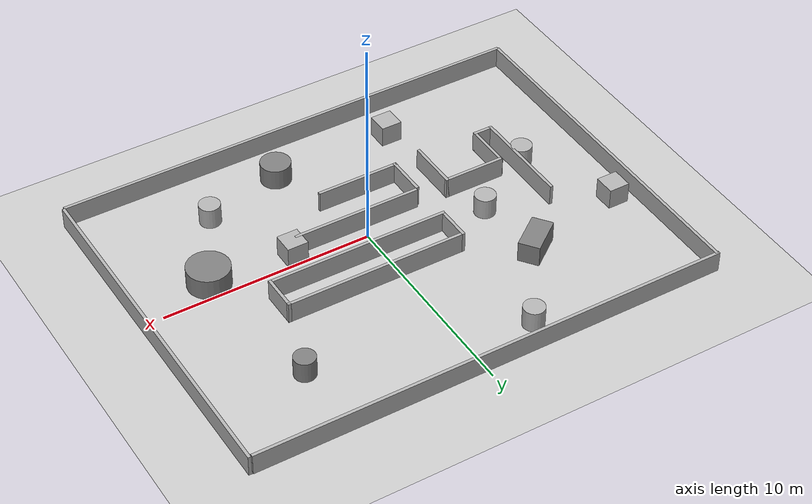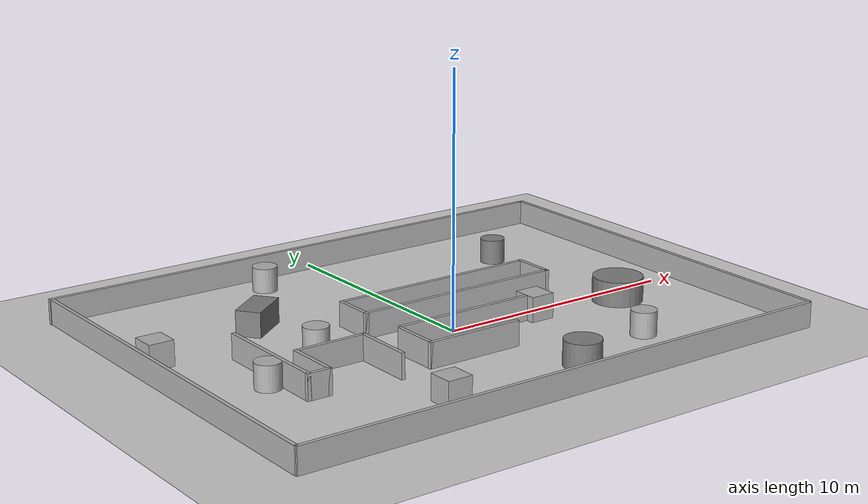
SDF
<?xml version="1.0" ?>
<!--
  world.sdf — Gazebo Harmonic (SDF 1.9)
  Converted from Gazebo Classic SDF 1.7.
  Layout: enclosed maze with walls + scattered obstacles.
  Robot spawn origin: (0, 0, 0.1) — clear area at centre.
-->
<sdf version="1.9">
  <world name="main_world">

    <!-- ── Gazebo Harmonic required system plugins ─────────────── -->
    <plugin filename="gz-sim-physics-system"
            name="gz::sim::systems::Physics"/>
    <plugin filename="gz-sim-user-commands-system"
            name="gz::sim::systems::UserCommands"/>
    <plugin filename="gz-sim-scene-broadcaster-system"
            name="gz::sim::systems::SceneBroadcaster"/>
    <plugin filename="gz-sim-contact-system"
            name="gz::sim::systems::Contact"/>

    <!-- ── Physics ─────────────────────────────────────────────── -->
    <physics name="default" type="ode">
      <max_step_size>0.001</max_step_size>
      <real_time_factor>1</real_time_factor>
      <real_time_update_rate>1000</real_time_update_rate>
    </physics>

    <!-- ── Scene ───────────────────────────────────────────────── -->
    <scene>
      <ambient>0.4 0.4 0.4 1</ambient>
      <background>0.7 0.7 0.7 1</background>
      <shadows>true</shadows>
    </scene>

    <!-- ── Sun ─────────────────────────────────────────────────── -->
    <light name="sun" type="directional">
      <cast_shadows>true</cast_shadows>
      <pose>0 0 10 0 0 0</pose>
      <diffuse>0.8 0.8 0.8 1</diffuse>
      <specular>0.2 0.2 0.2 1</specular>
      <attenuation>
        <range>1000</range>
        <constant>0.9</constant>
        <linear>0.01</linear>
        <quadratic>0.001</quadratic>
      </attenuation>
      <direction>-0.5 0.1 -0.9</direction>
    </light>

    <!-- ── Ground plane ────────────────────────────────────────── -->
    <model name="ground_plane">
      <static>true</static>
      <link name="link">
        <collision name="collision">
          <geometry>
            <plane>
              <normal>0 0 1</normal>
              <size>100 100</size>
            </plane>
          </geometry>
          <surface>
            <friction>
              <ode><mu>100</mu><mu2>50</mu2></ode>
            </friction>
          </surface>
        </collision>
        <visual name="visual">
          <cast_shadows>false</cast_shadows>
          <geometry>
            <plane>
              <normal>0 0 1</normal>
              <size>100 100</size>
            </plane>
          </geometry>
          <material>
            <ambient>0.8 0.8 0.8 1</ambient>
            <diffuse>0.8 0.8 0.8 1</diffuse>
          </material>
        </visual>
      </link>
    </model>

    <!--  BUILDING / MAZE                                           -->
    <!--  Static model — all links are walls / interior obstacles   -->
    <!--  Model origin in world: -1.23712  0.00846  0              -->
    <!--  All link poses below are RELATIVE to that origin.         -->
    <!--  Visual/collision offset (0 0 0.5) lifts geometry so       -->
    <!--  the wall base sits on z = 0 (ground).                     -->
    <model name="building1">
      <static>true</static>
      <pose>-1.23712 0.00846 0 0 0 0</pose>

      <!-- ── Outer boundary walls ─────────────────────────────── -->

      <!-- North outer wall -->
      <link name="Wall_7_clone">
        <pose>0.814901 9.57474 0 0 0 0</pose>
        <collision name="col">
          <pose>0 0 0.5 0 0 0</pose>
          <geometry><box><size>22.7246 0.15 1</size></box></geometry>
        </collision>
        <visual name="vis">
          <pose>0 0 0.5 0 0 0</pose>
          <geometry><box><size>22.7246 0.15 1</size></box></geometry>
          <material><ambient>0.7 0.7 0.7 1</ambient><diffuse>0.7 0.7 0.7 1</diffuse></material>
        </visual>
      </link>

      <!-- South outer wall -->
      <link name="Wall_7_clone_clone">
        <pose>0.891179 -7.53134 0 0 0 0</pose>
        <collision name="col">
          <pose>0 0 0.5 0 0 0</pose>
          <geometry><box><size>22.7246 0.15 1</size></box></geometry>
        </collision>
        <visual name="vis">
          <pose>0 0 0.5 0 0 0</pose>
          <geometry><box><size>22.7246 0.15 1</size></box></geometry>
          <material><ambient>0.7 0.7 0.7 1</ambient><diffuse>0.7 0.7 0.7 1</diffuse></material>
        </visual>
      </link>

      <!-- East outer wall -->
      <link name="Wall_6_clone">
        <pose>12.2823 1.06209 0 0 0 1.5708</pose>
        <collision name="col">
          <pose>0 0 0.5 0 0 0</pose>
          <geometry><box><size>17.1178 0.15 1</size></box></geometry>
        </collision>
        <visual name="vis">
          <pose>0 0 0.5 0 0 0</pose>
          <geometry><box><size>17.1178 0.15 1</size></box></geometry>
          <material><ambient>0.7 0.7 0.7 1</ambient><diffuse>0.7 0.7 0.7 1</diffuse></material>
        </visual>
      </link>

      <!-- West outer wall -->
      <link name="Wall_6_clone_clone">
        <pose>-10.4443 1.02433 0 0 0 1.5708</pose>
        <collision name="col">
          <pose>0 0 0.5 0 0 0</pose>
          <geometry><box><size>17.1178 0.15 1</size></box></geometry>
        </collision>
        <visual name="vis">
          <pose>0 0 0.5 0 0 0</pose>
          <geometry><box><size>17.1178 0.15 1</size></box></geometry>
          <material><ambient>0.7 0.7 0.7 1</ambient><diffuse>0.7 0.7 0.7 1</diffuse></material>
        </visual>
      </link>

      <!-- ── Interior walls ───────────────────────────────────── -->

      <link name="Wall_0">
        <pose>0.188 -2.6335 0 0 0 0</pose>
        <collision name="col">
          <pose>0 0 0.5 0 0 0</pose>
          <geometry><box><size>4 0.15 1</size></box></geometry>
        </collision>
        <visual name="vis">
          <pose>0 0 0.5 0 0 0</pose>
          <geometry><box><size>4 0.15 1</size></box></geometry>
          <material><ambient>0.7 0.7 0.7 1</ambient><diffuse>0.7 0.7 0.7 1</diffuse></material>
        </visual>
      </link>

      <link name="Wall_2">
        <pose>-1.737 -1.7085 0 0 0 1.5708</pose>
        <collision name="col">
          <pose>0 0 0.5 0 0 0</pose>
          <geometry><box><size>2 0.15 1</size></box></geometry>
        </collision>
        <visual name="vis">
          <pose>0 0 0.5 0 0 0</pose>
          <geometry><box><size>2 0.15 1</size></box></geometry>
          <material><ambient>0.7 0.7 0.7 1</ambient><diffuse>0.7 0.7 0.7 1</diffuse></material>
        </visual>
      </link>

      <link name="Wall_3">
        <pose>1.41966 -0.65738 0 0 0 0</pose>
        <collision name="col">
          <pose>0 0 0.5 0 0 0</pose>
          <geometry><box><size>6.16349 0.15 1</size></box></geometry>
        </collision>
        <visual name="vis">
          <pose>0 0 0.5 0 0 0</pose>
          <geometry><box><size>6.16349 0.15 1</size></box></geometry>
          <material><ambient>0.7 0.7 0.7 1</ambient><diffuse>0.7 0.7 0.7 1</diffuse></material>
        </visual>
      </link>

      <link name="Wall_5">
        <pose>2.479 1.2755 0 0 0 0</pose>
        <collision name="col">
          <pose>0 0 0.5 0 0 0</pose>
          <geometry><box><size>8.75 0.15 1</size></box></geometry>
        </collision>
        <visual name="vis">
          <pose>0 0 0.5 0 0 0</pose>
          <geometry><box><size>8.75 0.15 1</size></box></geometry>
          <material><ambient>0.7 0.7 0.7 1</ambient><diffuse>0.7 0.7 0.7 1</diffuse></material>
        </visual>
      </link>

      <link name="Wall_6">
        <pose>6.779 2.0755 0 0 0 1.5708</pose>
        <collision name="col">
          <pose>0 0 0.5 0 0 0</pose>
          <geometry><box><size>1.75 0.15 1</size></box></geometry>
        </collision>
        <visual name="vis">
          <pose>0 0 0.5 0 0 0</pose>
          <geometry><box><size>1.75 0.15 1</size></box></geometry>
          <material><ambient>0.7 0.7 0.7 1</ambient><diffuse>0.7 0.7 0.7 1</diffuse></material>
        </visual>
      </link>

      <link name="Wall_7">
        <pose>2.479 2.8755 0 0 0 0</pose>
        <collision name="col">
          <pose>0 0 0.5 0 0 0</pose>
          <geometry><box><size>8.75 0.15 1</size></box></geometry>
        </collision>
        <visual name="vis">
          <pose>0 0 0.5 0 0 0</pose>
          <geometry><box><size>8.75 0.15 1</size></box></geometry>
          <material><ambient>0.7 0.7 0.7 1</ambient><diffuse>0.7 0.7 0.7 1</diffuse></material>
        </visual>
      </link>

      <link name="Wall_8">
        <pose>-1.821 2.0755 0 0 0 1.5708</pose>
        <collision name="col">
          <pose>0 0 0.5 0 0 0</pose>
          <geometry><box><size>1.75 0.15 1</size></box></geometry>
        </collision>
        <visual name="vis">
          <pose>0 0 0.5 0 0 0</pose>
          <geometry><box><size>1.75 0.15 1</size></box></geometry>
          <material><ambient>0.7 0.7 0.7 1</ambient><diffuse>0.7 0.7 0.7 1</diffuse></material>
        </visual>
      </link>

      <link name="Wall_10">
        <pose>-6.863 -0.2005 0 0 0 1.5708</pose>
        <collision name="col">
          <pose>0 0 0.5 0 0 0</pose>
          <geometry><box><size>5 0.15 1</size></box></geometry>
        </collision>
        <visual name="vis">
          <pose>0 0 0.5 0 0 0</pose>
          <geometry><box><size>5 0.15 1</size></box></geometry>
          <material><ambient>0.7 0.7 0.7 1</ambient><diffuse>0.7 0.7 0.7 1</diffuse></material>
        </visual>
      </link>

      <link name="Wall_11">
        <pose>-6.438 -2.6255 0 0 0 0</pose>
        <collision name="col">
          <pose>0 0 0.5 0 0 0</pose>
          <geometry><box><size>1 0.15 1</size></box></geometry>
        </collision>
        <visual name="vis">
          <pose>0 0 0.5 0 0 0</pose>
          <geometry><box><size>1 0.15 1</size></box></geometry>
          <material><ambient>0.7 0.7 0.7 1</ambient><diffuse>0.7 0.7 0.7 1</diffuse></material>
        </visual>
      </link>

      <link name="Wall_12">
        <pose>-6.013 -1.5755 0 0 0 1.5708</pose>
        <collision name="col">
          <pose>0 0 0.5 0 0 0</pose>
          <geometry><box><size>2.25 0.15 1</size></box></geometry>
        </collision>
        <visual name="vis">
          <pose>0 0 0.5 0 0 0</pose>
          <geometry><box><size>2.25 0.15 1</size></box></geometry>
          <material><ambient>0.7 0.7 0.7 1</ambient><diffuse>0.7 0.7 0.7 1</diffuse></material>
        </visual>
      </link>

      <link name="Wall_13">
        <pose>-4.588 -0.5255 0 0 0 0</pose>
        <collision name="col">
          <pose>0 0 0.5 0 0 0</pose>
          <geometry><box><size>3 0.15 1</size></box></geometry>
        </collision>
        <visual name="vis">
          <pose>0 0 0.5 0 0 0</pose>
          <geometry><box><size>3 0.15 1</size></box></geometry>
          <material><ambient>0.7 0.7 0.7 1</ambient><diffuse>0.7 0.7 0.7 1</diffuse></material>
        </visual>
      </link>

      <link name="Wall_14">
        <pose>-3.163 -1.7005 0 0 0 1.5708</pose>
        <collision name="col">
          <pose>0 0 0.5 0 0 0</pose>
          <geometry><box><size>2.5 0.15 1</size></box></geometry>
        </collision>
        <visual name="vis">
          <pose>0 0 0.5 0 0 0</pose>
          <geometry><box><size>2.5 0.15 1</size></box></geometry>
          <material><ambient>0.7 0.7 0.7 1</ambient><diffuse>0.7 0.7 0.7 1</diffuse></material>
        </visual>
      </link>

      <!-- ── Interior obstacle cylinders ─────────────────────── -->
      <!-- Poses are relative to building1 origin -->

      <link name="obstacle_cyl_large">
        <pose>8.58859 -0.920444 0.5 0 0 0</pose>
        <collision name="col">
          <geometry><cylinder><radius>0.997</radius><length>1</length></cylinder></geometry>
        </collision>
        <visual name="vis">
          <geometry><cylinder><radius>0.997</radius><length>1</length></cylinder></geometry>
          <material><ambient>0.5 0.5 0.5 1</ambient><diffuse>0.5 0.5 0.5 1</diffuse></material>
        </visual>
      </link>

      <link name="obstacle_cyl_medium">
        <pose>2.78854 -5.53052 0.5 0 0 0</pose>
        <collision name="col">
          <geometry><cylinder><radius>0.716</radius><length>1</length></cylinder></geometry>
        </collision>
        <visual name="vis">
          <geometry><cylinder><radius>0.716</radius><length>1</length></cylinder></geometry>
          <material><ambient>0.5 0.5 0.5 1</ambient><diffuse>0.5 0.5 0.5 1</diffuse></material>
        </visual>
      </link>

      <link name="obstacle_cyl_small">
        <pose>7.74842 5.92019 0.5 0 0 0</pose>
        <collision name="col">
          <geometry><cylinder><radius>0.501</radius><length>1</length></cylinder></geometry>
        </collision>
        <visual name="vis">
          <geometry><cylinder><radius>0.501</radius><length>1</length></cylinder></geometry>
          <material><ambient>0.5 0.5 0.5 1</ambient><diffuse>0.5 0.5 0.5 1</diffuse></material>
        </visual>
      </link>

      <!-- ── Interior obstacle box (angled) ───────────────────── -->
      <link name="obstacle_box_angled">
        <pose>-4.53893 4.49368 0.5 0 0 -0.927989</pose>
        <collision name="col">
          <geometry><box><size>1 1.834 1</size></box></geometry>
        </collision>
        <visual name="vis">
          <geometry><box><size>1 1.834 1</size></box></geometry>
          <material><ambient>0.5 0.5 0.5 1</ambient><diffuse>0.5 0.5 0.5 1</diffuse></material>
        </visual>
      </link>

    </model><!-- /building1 -->

    <!--  STANDALONE OBSTACLES (world-frame, static)               -->
    <!--  Made static so they don't drift during simulation.        -->

    <model name="unit_box">
      <static>true</static>
      <pose>-10.6447 3.41778 0 0 0 0</pose>
      <link name="link">
        <collision name="col"><pose>0 0 0.5 0 0 0</pose>
          <geometry><box><size>1 1 1</size></box></geometry>
        </collision>
        <visual name="vis"><pose>0 0 0.5 0 0 0</pose>
          <geometry><box><size>1 1 1</size></box></geometry>
          <material><ambient>0.7 0.7 0.7 1</ambient><diffuse>0.7 0.7 0.7 1</diffuse></material>
        </visual>
      </link>
    </model>

    <model name="unit_box_0">
      <static>true</static>
      <pose>3.45478 -0.549454 0 0 0 0</pose>
      <link name="link">
        <collision name="col"><pose>0 0 0.5 0 0 0</pose>
          <geometry><box><size>1 1 1</size></box></geometry>
        </collision>
        <visual name="vis"><pose>0 0 0.5 0 0 0</pose>
          <geometry><box><size>1 1 1</size></box></geometry>
          <material><ambient>0.7 0.7 0.7 1</ambient><diffuse>0.7 0.7 0.7 1</diffuse></material>
        </visual>
      </link>
    </model>

    <model name="unit_box_1">
      <static>true</static>
      <pose>-4.27612 -5.54593 0 0 0 0</pose>
      <link name="link">
        <collision name="col"><pose>0 0 0.5 0 0 0</pose>
          <geometry><box><size>1 1 1</size></box></geometry>
        </collision>
        <visual name="vis"><pose>0 0 0.5 0 0 0</pose>
          <geometry><box><size>1 1 1</size></box></geometry>
          <material><ambient>0.7 0.7 0.7 1</ambient><diffuse>0.7 0.7 0.7 1</diffuse></material>
        </visual>
      </link>
    </model>

    <model name="unit_cylinder">
      <static>true</static>
      <pose>-8.58786 -0.82615 0 0 0 0</pose>
      <link name="link">
        <collision name="col"><pose>0 0 0.5 0 0 0</pose>
          <geometry><cylinder><radius>0.5</radius><length>1</length></cylinder></geometry>
        </collision>
        <visual name="vis"><pose>0 0 0.5 0 0 0</pose>
          <geometry><cylinder><radius>0.5</radius><length>1</length></cylinder></geometry>
          <material><ambient>0.7 0.7 0.7 1</ambient><diffuse>0.7 0.7 0.7 1</diffuse></material>
        </visual>
      </link>
    </model>

    <model name="unit_cylinder_0">
      <static>true</static>
      <pose>-3.12153 8.29716 0 0 0 0</pose>
      <link name="link">
        <collision name="col"><pose>0 0 0.5 0 0 0</pose>
          <geometry><cylinder><radius>0.5</radius><length>1</length></cylinder></geometry>
        </collision>
        <visual name="vis"><pose>0 0 0.5 0 0 0</pose>
          <geometry><cylinder><radius>0.5</radius><length>1</length></cylinder></geometry>
          <material><ambient>0.7 0.7 0.7 1</ambient><diffuse>0.7 0.7 0.7 1</diffuse></material>
        </visual>
      </link>
    </model>

    <model name="unit_cylinder_0_clone">
      <static>true</static>
      <pose>-5.29339 1.22652 0 0 0 0</pose>
      <link name="link">
        <collision name="col"><pose>0 0 0.5 0 0 0</pose>
          <geometry><cylinder><radius>0.5</radius><length>1</length></cylinder></geometry>
        </collision>
        <visual name="vis"><pose>0 0 0.5 0 0 0</pose>
          <geometry><cylinder><radius>0.5</radius><length>1</length></cylinder></geometry>
          <material><ambient>0.7 0.7 0.7 1</ambient><diffuse>0.7 0.7 0.7 1</diffuse></material>
        </visual>
      </link>
    </model>

    <model name="unit_cylinder_1">
      <static>true</static>
      <pose>5.42846 -4.48432 0 0 0 0</pose>
      <link name="link">
        <collision name="col"><pose>0 0 0.5 0 0 0</pose>
          <geometry><cylinder><radius>0.5</radius><length>1</length></cylinder></geometry>
        </collision>
        <visual name="vis"><pose>0 0 0.5 0 0 0</pose>
          <geometry><cylinder><radius>0.5</radius><length>1</length></cylinder></geometry>
          <material><ambient>0.7 0.7 0.7 1</ambient><diffuse>0.7 0.7 0.7 1</diffuse></material>
        </visual>
      </link>
    </model>

  </world>
</sdf>
